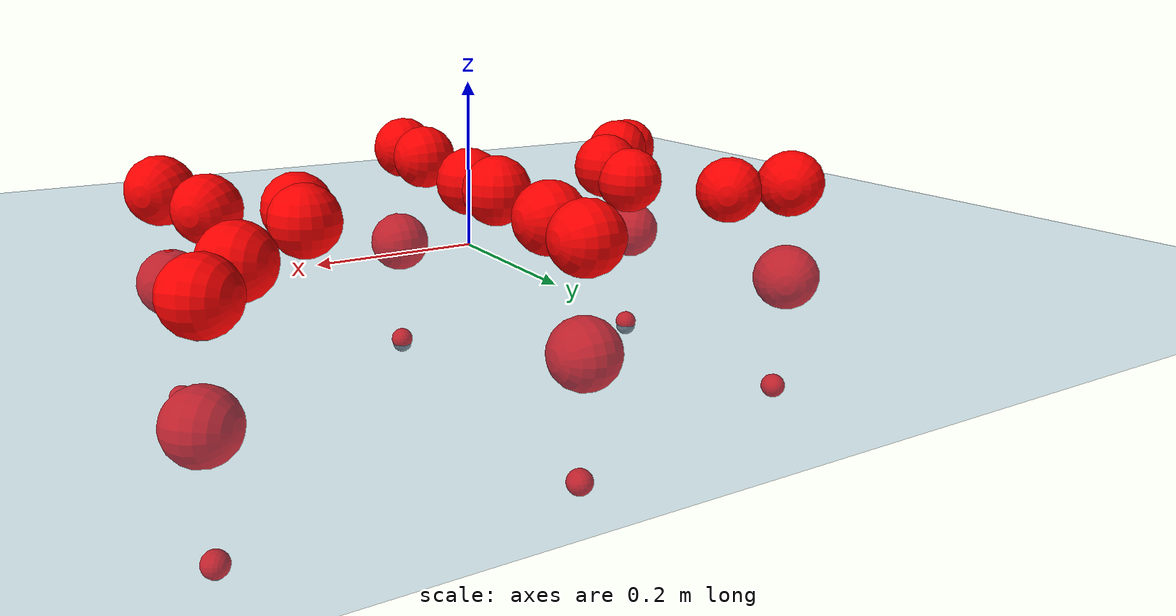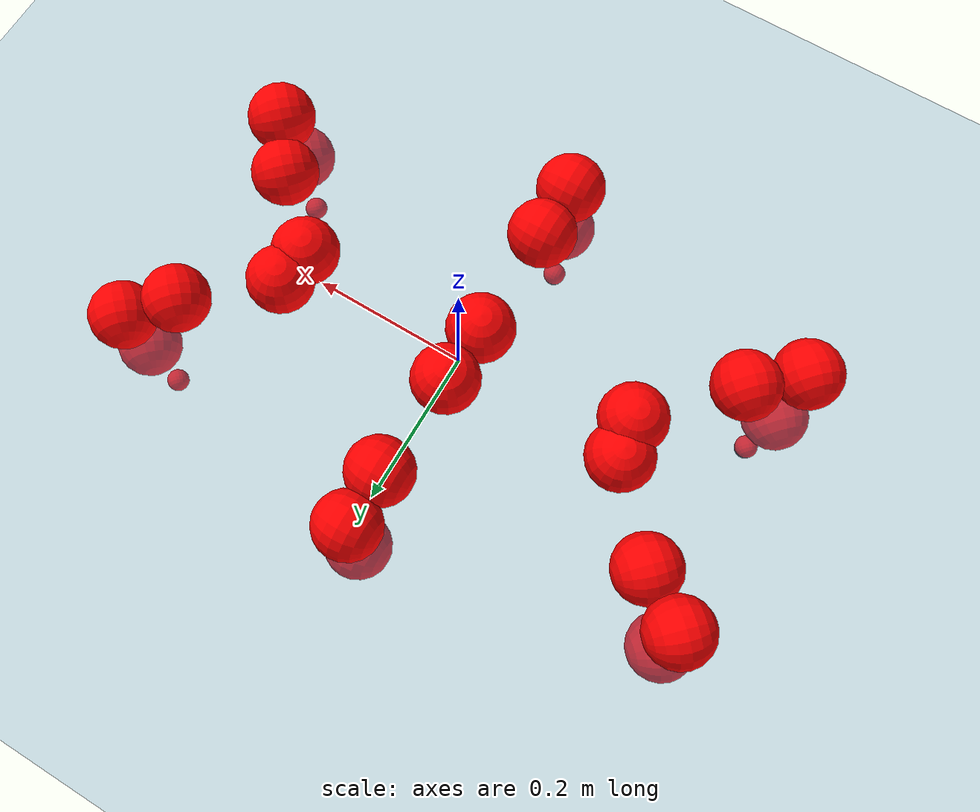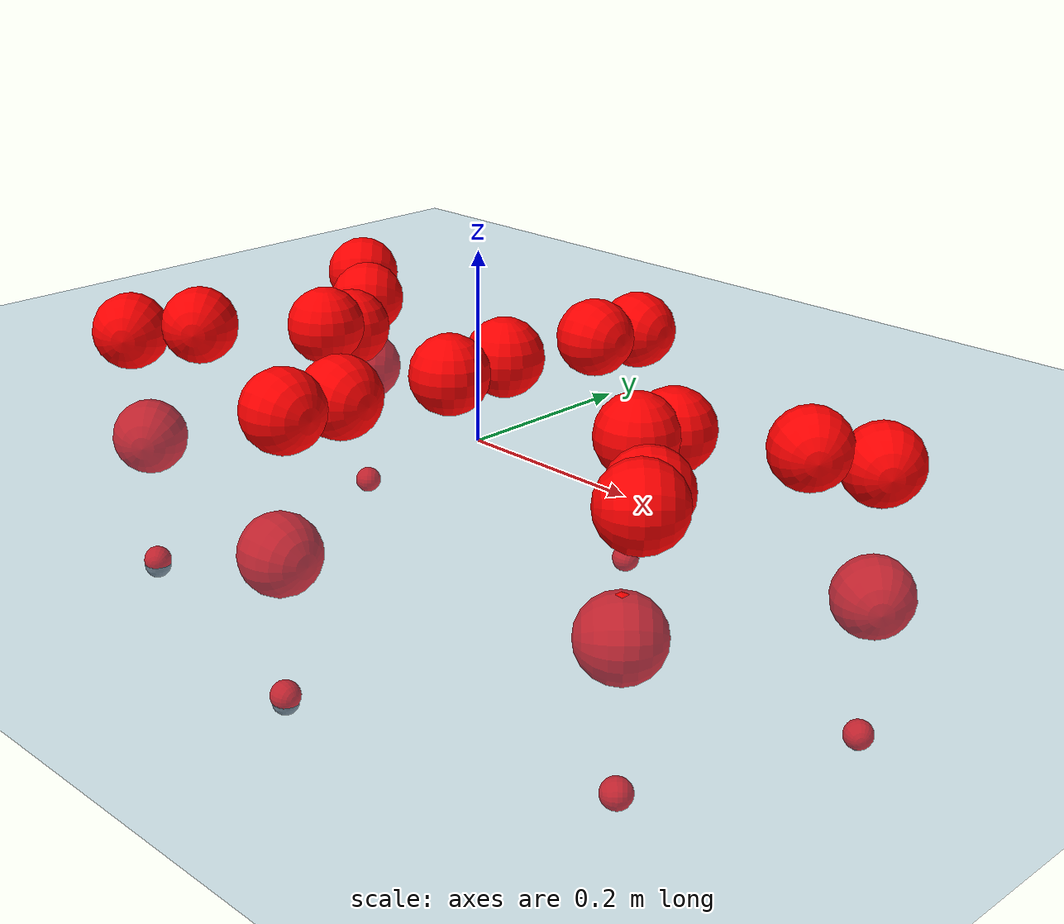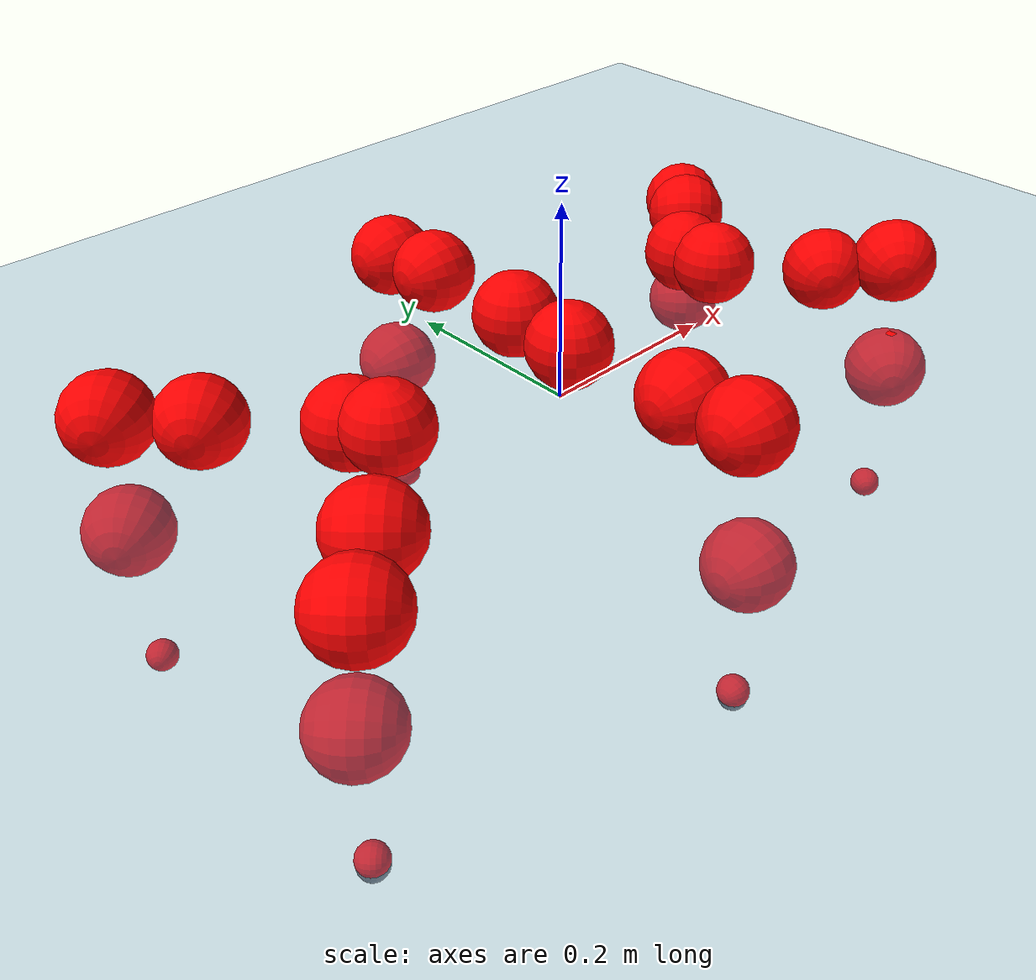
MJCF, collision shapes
<mujoco model="Golem">
  <compiler angle="radian" assetdir="assets" balanceinertia="true" inertiafromgeom="false"/>

  <option timestep="0.005" density="1.2" viscosity="2e-05"/>

  <size nkey="1"/>

  <visual>
    <quality shadowsize="8192"/>
    <map shadowclip="0.5"/>
  </visual>

  <default>
    <default class="/">
      <joint armature="0.01" damping="0.01" frictionloss="0.01"/>
      <geom contype="0" conaffinity="0" group="1" solref="-1000 -80"/>
      <site size="0.01 0.005 0.005" group="5"/>
      <general forcelimited="true" biastype="affine" gainprm="25" biasprm="0 -25 -0.5"/>
      <default class="visual">
        <geom type="mesh" group="2"/>
      </default>
      <default class="collision">
        <geom group="3"/>
      </default>
      <default class="foot">
        <geom size="0.01 0 0" condim="6" group="4" priority="1" solimp="0.015 1 0.01"/>
      </default>
      <default class="reward_collision_sphere">
        <geom group="5" rgba="1 0 0 1"/>
      </default>
    </default>
  </default>

  <asset>
    <texture type="skybox" colorspace="auto" name="//unnamed_texture_0" builtin="gradient" rgb1="0.95 0.95 0.95" rgb2="0.95 0.95 0.95" width="100" height="600"/>
    <texture type="2d" colorspace="auto" name="texplane" builtin="checker" rgb1="0.345 0.575 0.748" rgb2="0.345 0.575 0.748" markrgb="1 1 1" width="512" height="512"/>
    <material name="MatPlane" class="/" texture="texplane" texuniform="true" texrepeat="2 2" specular="0.9"/>
    <mesh name="body" class="/" file="body.stl" scale="0.001 0.001 0.001"/>
    <mesh name="coxa" class="/" file="coxa.stl" scale="0.001 0.001 0.001"/>
    <mesh name="femur" class="/" file="femur.stl" scale="0.001 0.001 0.001"/>
    <mesh name="tibia" class="/" file="tibia.stl" scale="0.001 0.001 0.001"/>
    <mesh name="tarsus" class="/" file="tarsus.stl" scale="0.001 0.001 0.001"/>
  </asset>

  <worldbody>
    <geom name="floor" class="/" size="100 100 0.125" type="plane" group="0" material="MatPlane"/>
    <light name="toplight_shadow" class="/" pos="0 0 5" dir="0.0990148 0.0990148 -0.990148" type="directional" ambient="0.04 0.04 0.04" diffuse="0.55 0.55 0.55" specular="0.12 0.12 0.12"/>
    <light name="toplight_fill" class="/" pos="0 0 5" dir="0.0990148 0.0990148 -0.990148" type="directional" castshadow="false" ambient="0.04 0.04 0.04" diffuse="0.3 0.3 0.3" specular="0.08 0.08 0.08"/>
    <body name="trunk" pos="0.000373972 0.00306376 0.00952645" quat="0.999983 -0.00470299 -0.00161788 0.00291809">
      <inertial pos="-0.00658758 0.00661405 -0.00995361" quat="0.999621 0.00824002 -0.0251714 -0.00751912" mass="5.46878" diaginertia="0.0681175 0.00135477 0.0145811"/>
      <joint name="//unnamed_joint_0" type="free"/>
      <geom name="//unnamed_geom_1" class="/" pos="0 0 0.0691467" quat="1 0 0 0" type="mesh" rgba="0.9 0.9 0.9 1" mesh="body"/>
      <site name="imu" class="/" pos="0.209212 -0.0595722 0.0337744" size="0.0105314"/>
      <camera name="track" class="/" pos="0 -1.2932 0" quat="0.707107 0.707107 0 0" mode="trackcom"/>
      <camera name="ego_camera" class="/" pos="0.18621 0 0.108042" quat="-0.5 -0.5 0.5 0.5"/>
      <body name="coxa_RR" pos="-0.251216 -0.0522781 0.0684126" quat="0.375645 0.000510773 -0.000553515 -0.926763">
        <inertial pos="-0.0106956 -0.00523695 0.00842367" quat="0.9994 0.030072 -0.0087569 0.0147795" mass="0.208881" diaginertia="0.0678045 0.00100162 0.0125224"/>
        <joint name="coxa_joint_RR" class="/" pos="0 0 0" axis="-0.0256094 0.0191709 -0.999488" range="-3.27547 3.24289" armature="0.00957748" damping="0.0262551" frictionloss="0.00729341"/>
        <geom name="//unnamed_geom_2" class="/" type="mesh" rgba="0.2 0.2 0.2 1" mesh="coxa"/>
        <geom name="//unnamed_geom_3" class="reward_collision_sphere" size="0.0421254" pos="-0.0429716 0 0"/>
        <body name="femur_RR" pos="0.094017 0.00715991 0.000776655" quat="0.500639 -0.505208 0.497961 0.496145">
          <inertial pos="0.00048701 -0.0146159 -0.00810672" quat="0.998915 0.0227645 -0.0404034 0.00435321" mass="0.266052" diaginertia="0.0620964 0.00142845 0.0168292"/>
          <joint name="femur_joint_RR" class="/" pos="0 0 0" axis="0.00176817 0.0142945 -0.999896" range="-3.24918 3.24981" armature="0.00468595" damping="0" frictionloss="0.0108724"/>
          <geom name="//unnamed_geom_4" class="/" type="mesh" rgba="0.9 0.9 0.9 1" mesh="femur"/>
          <geom name="//unnamed_geom_5" class="reward_collision_sphere" size="0.0421254"/>
          <body name="tibia_RR" pos="0.0091983 -0.0764725 -0.00221974" quat="0.000168783 1 0.000271272 1.94296e-05">
            <inertial pos="-0.00113249 -0.0135862 -0.00345272" quat="1 0.000178731 -0.000227728 -9.28904e-05" mass="0.265464" diaginertia="0.0688606 0.0012768 0.0169642"/>
            <joint name="tibia_joint_RR" class="/" pos="0 0 0" axis="0.0621193 0.0217301 0.997832" stiffness="0.0507416" range="-3.41293 3.06259" armature="0.0154221" damping="0.0462941" frictionloss="0.00237256"/>
            <geom name="//unnamed_geom_6" class="/" type="mesh" rgba="0.2 0.2 0.2 1" mesh="tibia"/>
            <geom name="//unnamed_geom_7" class="reward_collision_sphere" size="0.0421254"/>
            <body name="tarsus_RR" pos="0.128699 -0.0109164 0.0132445" quat="0.999992 0.0034501 0.00155992 0.00150891">
              <inertial pos="0.0788473 0.00365709 -0.0102285" quat="0.507068 0.497126 0.470657 0.523669" mass="0.271969" diaginertia="0.0671515 0.0013902 0.013776"/>
              <joint name="tarsus_joint_RR" class="/" pos="0 0 0" axis="-0.0387507 0.0275341 0.998869" range="-2.97156 3.17313" armature="0.0138198" damping="0" frictionloss="0.00925338"/>
              <geom name="//unnamed_geom_8" class="/" type="mesh" rgba="0.9 0.9 0.9 1" mesh="tarsus"/>
              <geom name="foot_1" class="foot" size="0.0151687" pos="0.160427 0 0" quat="0 -0.707107 0 0.707107"/>
              <geom name="//unnamed_geom_10" class="reward_collision_sphere" size="0.0421254"/>
              <geom name="//unnamed_geom_11" class="reward_collision_sphere" size="0.015797" pos="0.153981 0 0"/>
              <site name="foot_1" class="foot" pos="0.160427 0 0" quat="0 -0.707107 0 0.707107" size="0.0105314"/>
            </body>
          </body>
        </body>
      </body>
      <body name="coxa_RM" pos="-0.0151328 -0.0725947 0.0645751" quat="0.706446 -0.00151285 -0.00120538 -0.707765">
        <inertial pos="-0.00124924 0.000970648 0.0120697" quat="0.997262 -0.0651173 0.0108749 0.0333263" mass="0.208332" diaginertia="0.0483871 0.000760135 0.0103258"/>
        <joint name="coxa_joint_RM" class="/" pos="0 0 0" axis="0.00353368 -0.0709268 -0.997475" stiffness="0.037636" range="-3.1534 3.3009" armature="0.0130071" damping="0" frictionloss="0.00544187"/>
        <geom name="//unnamed_geom_12" class="/" type="mesh" rgba="0.2 0.2 0.2 1" mesh="coxa"/>
        <geom name="//unnamed_geom_13" class="reward_collision_sphere" size="0.0421254" pos="-0.0429716 0 0"/>
        <body name="femur_RM" pos="0.0960777 -0.00375274 0.00810103" quat="0.500418 -0.499966 0.499838 0.499778">
          <inertial pos="-6.03782e-05 -0.0105882 0.000537327" quat="0.999886 0.0139223 0.0039456 0.00431596" mass="0.212012" diaginertia="0.0703002 0.00114757 0.0163197"/>
          <joint name="femur_joint_RM" class="/" pos="0 0 0" axis="0.000210718 4.0223e-05 -1" stiffness="0.0544905" range="-3.37131 2.98405" armature="0.00531167" damping="0.0128724" frictionloss="0.0037884"/>
          <geom name="//unnamed_geom_14" class="/" type="mesh" rgba="0.9 0.9 0.9 1" mesh="femur"/>
          <geom name="//unnamed_geom_15" class="reward_collision_sphere" size="0.0421254"/>
          <body name="tibia_RM" pos="-0.00258285 -0.0684722 -0.000900276" quat="-0.000733734 1 -0.000486329 -0.000408298">
            <inertial pos="-0.00127595 0.000304619 -0.0110225" quat="0.999839 0.00732966 0.0132703 0.00958938" mass="0.193773" diaginertia="0.0605027 0.00111836 0.016135"/>
            <joint name="tibia_joint_RM" class="/" pos="0 0 0" axis="0.0202757 -0.0643206 0.997723" range="-3.27347 2.93894" armature="0.0178638" damping="0.0060575" frictionloss="0.0034156"/>
            <geom name="//unnamed_geom_16" class="/" type="mesh" rgba="0.2 0.2 0.2 1" mesh="tibia"/>
            <geom name="//unnamed_geom_17" class="reward_collision_sphere" size="0.0421254"/>
            <body name="tarsus_RM" pos="0.14148 0.0120779 -0.00393979" quat="0.999987 -0.00424654 -0.0027871 -0.00097138">
              <inertial pos="0.0870503 0.00236255 7.14932e-05" quat="0.500058 0.499998 0.499985 0.499959" mass="0.167799" diaginertia="0.0508528 0.0009453 0.0120958"/>
              <joint name="tarsus_joint_RM" class="/" pos="0 0 0" axis="-0.022314 0.0235296 0.999474" range="-3.26147 3.21416" armature="0.0143574" damping="0" frictionloss="0.00835741"/>
              <geom name="//unnamed_geom_18" class="/" type="mesh" rgba="0.9 0.9 0.9 1" mesh="tarsus"/>
              <geom name="foot_2" class="foot" size="0.0141042" pos="0.160427 0 0" quat="0 -0.707107 0 0.707107"/>
              <geom name="//unnamed_geom_20" class="reward_collision_sphere" size="0.0421254"/>
              <geom name="//unnamed_geom_21" class="reward_collision_sphere" size="0.015797" pos="0.153981 0 0"/>
              <site name="foot_2" class="foot" pos="0.160427 0 0" quat="0 -0.707107 0 0.707107" size="0.0105314"/>
            </body>
          </body>
        </body>
      </body>
      <body name="coxa_RF" pos="0.248309 -0.0399893 0.0579519" quat="0.923875 7.64985e-06 2.57263e-07 -0.382694">
        <inertial pos="0.0138708 -0.0016288 0.0109364" quat="0.998934 -0.00200401 0.044653 0.0115176" mass="0.221546" diaginertia="0.0479198 0.000879942 0.0122274"/>
        <joint name="coxa_joint_RF" class="/" pos="0 0 0" axis="-0.00285657 -0.0198648 -0.999799" stiffness="0.0562832" range="-3.16657 3.32586" armature="0.0120385" damping="0" frictionloss="0.00370246"/>
        <geom name="//unnamed_geom_22" class="/" type="mesh" rgba="0.2 0.2 0.2 1" mesh="coxa"/>
        <geom name="//unnamed_geom_23" class="reward_collision_sphere" size="0.0421254" pos="-0.0429716 0 0"/>
        <body name="femur_RF" pos="0.0717932 0.00236107 -0.00856051" quat="0.502237 -0.496777 0.497518 0.503435">
          <inertial pos="-0.00276112 -0.000328865 0.0042274" quat="0.999143 -0.0117755 -0.0384565 0.00978494" mass="0.225723" diaginertia="0.0673038 0.00129673 0.0163982"/>
          <joint name="femur_joint_RF" class="/" pos="0 0 0" axis="0.0286327 -0.00448513 -0.99958" range="-3.2854 3.16036" armature="0.00893354" damping="0.0142211" frictionloss="0.00932929"/>
          <geom name="//unnamed_geom_24" class="/" type="mesh" rgba="0.9 0.9 0.9 1" mesh="femur"/>
          <geom name="//unnamed_geom_25" class="reward_collision_sphere" size="0.0421254"/>
          <body name="tibia_RF" pos="-0.0157027 -0.0679345 -0.0119427" quat="-0.00194637 0.999995 -0.00245791 -0.000199309">
            <inertial pos="-0.00198623 0.0132894 0.0114579" quat="0.997949 0.048316 0.039604 -0.0139872" mass="0.254093" diaginertia="0.0772349 0.0014108 0.0143792"/>
            <joint name="tibia_joint_RF" class="/" pos="0 0 0" axis="0.0146945 0.0619584 0.997971" stiffness="0.0753667" range="-2.98527 3.11744" armature="0.0101077" damping="0.0416381" frictionloss="0.0152118"/>
            <geom name="//unnamed_geom_26" class="/" type="mesh" rgba="0.2 0.2 0.2 1" mesh="tibia"/>
            <geom name="//unnamed_geom_27" class="reward_collision_sphere" size="0.0421254"/>
            <body name="tarsus_RF" pos="0.11899 0.00537363 0.0143287" quat="1 -4.28887e-05 3.49208e-05 8.94046e-05">
              <inertial pos="0.0817625 -0.00313207 0.00192411" quat="0.500874 0.486508 0.487991 0.523737" mass="0.251908" diaginertia="0.0719157 0.0014186 0.0155168"/>
              <joint name="tarsus_joint_RF" class="/" pos="0 0 0" axis="0.0150039 0.0729034 0.997226" range="-3.08469 3.21621" armature="0.013846" damping="0.0125348" frictionloss="0.00603686"/>
              <geom name="//unnamed_geom_28" class="/" type="mesh" rgba="0.9 0.9 0.9 1" mesh="tarsus"/>
              <geom name="foot_3" class="foot" size="0.0075459" pos="0.160427 0 0" quat="0 -0.707107 0 0.707107"/>
              <geom name="//unnamed_geom_30" class="reward_collision_sphere" size="0.0421254"/>
              <geom name="//unnamed_geom_31" class="reward_collision_sphere" size="0.015797" pos="0.153981 0 0"/>
              <site name="foot_3" class="foot" pos="0.160427 0 0" quat="0 -0.707107 0 0.707107" size="0.0105314"/>
            </body>
          </body>
        </body>
      </body>
      <body name="coxa_LR" pos="-0.258986 0.0511993 0.0552443" quat="0.381153 -0.00264958 0.00534742 0.924493">
        <inertial pos="0.00772483 -0.011543 0.0122658" quat="0.999831 0.00150127 -0.017179 0.00630451" mass="0.226548" diaginertia="0.0615717 0.00121468 0.0139619"/>
        <joint name="coxa_joint_LR" class="/" pos="0 0 0" axis="-0.0314469 -0.0446634 -0.998507" range="-2.99456 2.87698" armature="0.0100895" damping="0.000551934" frictionloss="0.00505512"/>
        <geom name="//unnamed_geom_32" class="/" type="mesh" rgba="0.2 0.2 0.2 1" mesh="coxa"/>
        <geom name="//unnamed_geom_33" class="reward_collision_sphere" size="0.0421254" pos="-0.0429716 0 0"/>
        <body name="femur_LR" pos="0.0859889 -0.00818465 -0.00216976" quat="0.498379 -0.49899 0.500017 0.502603">
          <inertial pos="-0.00191438 -0.0102867 -0.005422" quat="0.99757 -0.0668946 -0.00125198 -0.0194337" mass="0.26857" diaginertia="0.0548925 0.00126948 0.0173625"/>
          <joint name="femur_joint_LR" class="/" pos="0 0 0" axis="-0.0593708 0.0530365 0.996826" range="-2.98829 3.01253" armature="0.0031012" damping="0" frictionloss="0.0104849"/>
          <geom name="//unnamed_geom_34" class="/" type="mesh" rgba="0.9 0.9 0.9 1" mesh="femur"/>
          <geom name="//unnamed_geom_35" class="reward_collision_sphere" size="0.0421254"/>
          <body name="tibia_LR" pos="-0.0118457 -0.0744592 0.0107602" quat="-0.00264405 0.999996 -5.90704e-05 -0.00128623">
            <inertial pos="0.00796835 -0.00583243 -0.0113229" quat="0.998726 -0.0459407 0.0026302 0.0206891" mass="0.185998" diaginertia="0.054641 0.000974772 0.0151397"/>
            <joint name="tibia_joint_LR" class="/" pos="0 0 0" axis="0.00549399 0.000983984 -0.999984" range="-3.41904 2.92933" armature="0.0170612" damping="0" frictionloss="0.0108042"/>
            <geom name="//unnamed_geom_36" class="/" type="mesh" rgba="0.2 0.2 0.2 1" mesh="tibia"/>
            <geom name="//unnamed_geom_37" class="reward_collision_sphere" size="0.0421254"/>
            <body name="tarsus_LR" pos="0.122971 0.00817675 0.00258582" quat="1 -0.00028081 0.000244189 -9.97143e-05">
              <inertial pos="0.0869612 0.0125272 -0.00353647" quat="0.496637 0.501469 0.502018 0.499859" mass="0.291656" diaginertia="0.0646092 0.000977182 0.0141487"/>
              <joint name="tarsus_joint_LR" class="/" pos="0 0 0" axis="-0.000522083 0.00237077 -0.999997" range="-3.06446 2.95767" armature="0.011231" damping="0.03556" frictionloss="0.0152021"/>
              <geom name="//unnamed_geom_38" class="/" type="mesh" rgba="0.9 0.9 0.9 1" mesh="tarsus"/>
              <geom name="foot_4" class="foot" size="0.00702168" pos="0.160427 0 0" quat="0.707107 0 -0.707107 0"/>
              <geom name="//unnamed_geom_40" class="reward_collision_sphere" size="0.0421254"/>
              <geom name="//unnamed_geom_41" class="reward_collision_sphere" size="0.015797" pos="0.153981 0 0"/>
              <site name="foot_4" class="foot" pos="0.160427 0 0" quat="0.707107 0 -0.707107 0" size="0.0105314"/>
            </body>
          </body>
        </body>
      </body>
      <body name="coxa_LM" pos="-0.011635 0.0883944 0.0665765" quat="0.707863 -0.00059228 0.00196712 0.706347">
        <inertial pos="-0.000655578 -0.000664031 0.0137196" quat="0.999857 -0.00946808 -0.0123405 -0.00665129" mass="0.237379" diaginertia="0.0514401 0.00105604 0.0136559"/>
        <joint name="coxa_joint_LM" class="/" pos="0 0 0" axis="0.0283804 -0.0305147 -0.999131" range="-3.07446 3.14429" armature="0.00726335" damping="0.0597052" frictionloss="0.0101532"/>
        <geom name="//unnamed_geom_42" class="/" type="mesh" rgba="0.2 0.2 0.2 1" mesh="coxa"/>
        <geom name="//unnamed_geom_43" class="reward_collision_sphere" size="0.0421254" pos="-0.0429716 0 0"/>
        <body name="femur_LM" pos="0.0873971 -0.00823494 -0.00421814" quat="0.500418 -0.500053 0.49972 0.499808">
          <inertial pos="0.0105691 0.00223294 0.0151834" quat="0.998553 0.0394656 0.0221052 0.0290882" mass="0.244735" diaginertia="0.0658366 0.00119629 0.0159757"/>
          <joint name="femur_joint_LM" class="/" pos="0 0 0" axis="-0.0334509 -0.0247461 0.999134" range="-3.22891 3.43449" armature="0.0148481" damping="0.0144712" frictionloss="0.0168273"/>
          <geom name="//unnamed_geom_44" class="/" type="mesh" rgba="0.9 0.9 0.9 1" mesh="femur"/>
          <geom name="//unnamed_geom_45" class="reward_collision_sphere" size="0.0421254"/>
          <body name="tibia_LM" pos="0.00614549 -0.070256 0.000196348" quat="0.000638784 0.999992 0.00182753 0.00343045">
            <inertial pos="-0.00711133 5.14026e-05 -0.000942955" quat="0.999876 -0.00518055 0.0141279 -0.00462017" mass="0.249458" diaginertia="0.072679 0.00133634 0.0173855"/>
            <joint name="tibia_joint_LM" class="/" pos="0 0 0" axis="-0.0314992 -0.050714 -0.998216" range="-3.37239 3.30007" armature="0.00258754" damping="0.045144" frictionloss="0.00446287"/>
            <geom name="//unnamed_geom_46" class="/" type="mesh" rgba="0.2 0.2 0.2 1" mesh="tibia"/>
            <geom name="//unnamed_geom_47" class="reward_collision_sphere" size="0.0421254"/>
            <body name="tarsus_LM" pos="0.127802 0.00193361 -0.00129065" quat="1 7.41651e-06 0.000143202 6.61109e-05">
              <inertial pos="0.0932459 0.00822477 0.000412468" quat="0.474327 0.49489 0.530035 0.49916" mass="0.278968" diaginertia="0.0761521 0.00161487 0.0188836"/>
              <joint name="tarsus_joint_LM" class="/" pos="0 0 0" axis="0.0164571 0.0407742 -0.999033" range="-3.15788 3.1212" armature="0.0129308" damping="0" frictionloss="0.00283732"/>
              <geom name="//unnamed_geom_48" class="/" type="mesh" rgba="0.9 0.9 0.9 1" mesh="tarsus"/>
              <geom name="foot_5" class="foot" size="0.00714561" pos="0.160427 0 0" quat="0.707107 0 -0.707107 0"/>
              <geom name="//unnamed_geom_50" class="reward_collision_sphere" size="0.0421254"/>
              <geom name="//unnamed_geom_51" class="reward_collision_sphere" size="0.015797" pos="0.153981 0 0"/>
              <site name="foot_5" class="foot" pos="0.160427 0 0" quat="0.707107 0 -0.707107 0" size="0.0105314"/>
            </body>
          </body>
        </body>
      </body>
      <body name="coxa_LF" pos="0.255133 0.0654059 0.0538607" quat="0.922951 0.00123173 0.000611865 0.384914">
        <inertial pos="0.0135445 0.015284 0.0100805" quat="0.999671 0.00600011 -0.00851185 -0.0234355" mass="0.266754" diaginertia="0.0684793 0.00153396 0.0144929"/>
        <joint name="coxa_joint_LF" class="/" pos="0 0 0" axis="0.0677717 0.000392965 -0.997701" stiffness="0.00303828" range="-2.9689 3.15428" armature="0.00795504" damping="0" frictionloss="0.0162558"/>
        <geom name="//unnamed_geom_52" class="/" type="mesh" rgba="0.2 0.2 0.2 1" mesh="coxa"/>
        <geom name="//unnamed_geom_53" class="reward_collision_sphere" size="0.0421254" pos="-0.0429716 0 0"/>
        <body name="femur_LF" pos="0.0848633 -0.0130152 -0.0124822" quat="0.498361 -0.498393 0.498652 0.504565">
          <inertial pos="0.0014619 0.00882219 -0.00539969" quat="0.99999 0.000301994 -0.00282639 -0.00354551" mass="0.252145" diaginertia="0.0820565 0.00131925 0.017021"/>
          <joint name="femur_joint_LF" class="/" pos="0 0 0" axis="-0.0527481 0.0395798 0.997823" range="-2.98925 2.91621" armature="0.00853357" damping="0.00207046" frictionloss="0.0105633"/>
          <geom name="//unnamed_geom_54" class="/" type="mesh" rgba="0.9 0.9 0.9 1" mesh="femur"/>
          <geom name="//unnamed_geom_55" class="reward_collision_sphere" size="0.0421254"/>
          <body name="tibia_LF" pos="0.0142013 -0.0684717 -0.00216397" quat="-1.45632e-05 0.999992 -0.00404432 0.000619684">
            <inertial pos="-0.00911592 -0.0129945 0.00810028" quat="0.999977 -0.00416538 -0.00238664 0.00478872" mass="0.217905" diaginertia="0.0715395 0.00119995 0.0172536"/>
            <joint name="tibia_joint_LF" class="/" pos="0 0 0" axis="-0.0431037 0.0208148 -0.998854" stiffness="0.0668983" range="-3.16639 3.36336" armature="0.0134274" damping="0.0463473" frictionloss="0.00797613"/>
            <geom name="//unnamed_geom_56" class="/" type="mesh" rgba="0.2 0.2 0.2 1" mesh="tibia"/>
            <geom name="//unnamed_geom_57" class="reward_collision_sphere" size="0.0421254"/>
            <body name="tarsus_LF" pos="0.133704 0.000679225 0.0110177" quat="1 -5.21093e-05 7.43637e-05 -0.000126574">
              <inertial pos="0.101459 -0.00414672 0.00483902" quat="0.476113 0.555218 0.511375 0.45116" mass="0.249796" diaginertia="0.0584853 0.00110048 0.014898"/>
              <joint name="tarsus_joint_LF" class="/" pos="0 0 0" axis="-0.0366465 0.0707933 -0.996818" range="-3.29281 3.34568" armature="0.0117488" damping="0.0599193" frictionloss="0.01441"/>
              <geom name="//unnamed_geom_58" class="/" type="mesh" rgba="0.9 0.9 0.9 1" mesh="tarsus"/>
              <geom name="foot_6" class="foot" size="0.0107896" pos="0.160427 0 0" quat="0.707107 0 -0.707107 0"/>
              <geom name="//unnamed_geom_60" class="reward_collision_sphere" size="0.0421254"/>
              <geom name="//unnamed_geom_61" class="reward_collision_sphere" size="0.015797" pos="0.153981 0 0"/>
              <site name="foot_6" class="foot" pos="0.160427 0 0" quat="0.707107 0 -0.707107 0" size="0.0105314"/>
            </body>
          </body>
        </body>
      </body>
    </body>
  </worldbody>

  <contact>
    <pair class="/" geom1="floor" geom2="foot_1" name="//unnamed_contact_0"/>
    <pair class="/" geom1="floor" geom2="foot_2" name="//unnamed_contact_1"/>
    <pair class="/" geom1="floor" geom2="foot_3" name="//unnamed_contact_2"/>
    <pair class="/" geom1="floor" geom2="foot_4" name="//unnamed_contact_3"/>
    <pair class="/" geom1="floor" geom2="foot_5" name="//unnamed_contact_4"/>
    <pair class="/" geom1="floor" geom2="foot_6" name="//unnamed_contact_5"/>
  </contact>

  <actuator>
    <general name="coxa_joint_RR" class="/" joint="coxa_joint_RR" forcerange="-7.38787 7.38787" gainprm="24.0563" biasprm="0 -24.0563 -0.443844"/>
    <general name="femur_joint_RR" class="/" joint="femur_joint_RR" forcerange="-6.31358 6.31358" gainprm="24.0563" biasprm="0 -24.0563 -0.443844"/>
    <general name="tibia_joint_RR" class="/" joint="tibia_joint_RR" forcerange="-7.46216 7.46216" gainprm="24.0563" biasprm="0 -24.0563 -0.443844"/>
    <general name="tarsus_joint_RR" class="/" joint="tarsus_joint_RR" forcerange="-4.36468 4.36468" gainprm="24.0563" biasprm="0 -24.0563 -0.443844"/>
    <general name="coxa_joint_RM" class="/" joint="coxa_joint_RM" forcerange="-9.54013 9.54013" gainprm="24.0563" biasprm="0 -24.0563 -0.443844"/>
    <general name="femur_joint_RM" class="/" joint="femur_joint_RM" forcerange="-4.33419 4.33419" gainprm="24.0563" biasprm="0 -24.0563 -0.443844"/>
    <general name="tibia_joint_RM" class="/" joint="tibia_joint_RM" forcerange="-6.21606 6.21606" gainprm="24.0563" biasprm="0 -24.0563 -0.443844"/>
    <general name="tarsus_joint_RM" class="/" joint="tarsus_joint_RM" forcerange="-5.71346 5.71346" gainprm="24.0563" biasprm="0 -24.0563 -0.443844"/>
    <general name="coxa_joint_RF" class="/" joint="coxa_joint_RF" forcerange="-11.0015 11.0015" gainprm="24.0563" biasprm="0 -24.0563 -0.443844"/>
    <general name="femur_joint_RF" class="/" joint="femur_joint_RF" forcerange="-6.93508 6.93508" gainprm="24.0563" biasprm="0 -24.0563 -0.443844"/>
    <general name="tibia_joint_RF" class="/" joint="tibia_joint_RF" forcerange="-5.99438 5.99438" gainprm="24.0563" biasprm="0 -24.0563 -0.443844"/>
    <general name="tarsus_joint_RF" class="/" joint="tarsus_joint_RF" forcerange="-6.8201 6.8201" gainprm="24.0563" biasprm="0 -24.0563 -0.443844"/>
    <general name="coxa_joint_LR" class="/" joint="coxa_joint_LR" forcerange="-7.86256 7.86256" gainprm="24.0563" biasprm="0 -24.0563 -0.443844"/>
    <general name="femur_joint_LR" class="/" joint="femur_joint_LR" forcerange="-7.42413 7.42413" gainprm="24.0563" biasprm="0 -24.0563 -0.443844"/>
    <general name="tibia_joint_LR" class="/" joint="tibia_joint_LR" forcerange="-8.22083 8.22083" gainprm="24.0563" biasprm="0 -24.0563 -0.443844"/>
    <general name="tarsus_joint_LR" class="/" joint="tarsus_joint_LR" forcerange="-7.4579 7.4579" gainprm="24.0563" biasprm="0 -24.0563 -0.443844"/>
    <general name="coxa_joint_LM" class="/" joint="coxa_joint_LM" forcerange="-8.80942 8.80942" gainprm="24.0563" biasprm="0 -24.0563 -0.443844"/>
    <general name="femur_joint_LM" class="/" joint="femur_joint_LM" forcerange="-8.68574 8.68574" gainprm="24.0563" biasprm="0 -24.0563 -0.443844"/>
    <general name="tibia_joint_LM" class="/" joint="tibia_joint_LM" forcerange="-7.84253 7.84253" gainprm="24.0563" biasprm="0 -24.0563 -0.443844"/>
    <general name="tarsus_joint_LM" class="/" joint="tarsus_joint_LM" forcerange="-5.78172 5.78172" gainprm="24.0563" biasprm="0 -24.0563 -0.443844"/>
    <general name="coxa_joint_LF" class="/" joint="coxa_joint_LF" forcerange="-10.0162 10.0162" gainprm="24.0563" biasprm="0 -24.0563 -0.443844"/>
    <general name="femur_joint_LF" class="/" joint="femur_joint_LF" forcerange="-7.99617 7.99617" gainprm="24.0563" biasprm="0 -24.0563 -0.443844"/>
    <general name="tibia_joint_LF" class="/" joint="tibia_joint_LF" forcerange="-7.91756 7.91756" gainprm="24.0563" biasprm="0 -24.0563 -0.443844"/>
    <general name="tarsus_joint_LF" class="/" joint="tarsus_joint_LF" forcerange="-7.98491 7.98491" gainprm="24.0563" biasprm="0 -24.0563 -0.443844"/>
  </actuator>

  <sensor>
    <gyro site="imu" name="imu_angular_velocity"/>
    <velocimeter site="imu" name="imu_linear_velocity"/>
    <framelinvel objtype="site" objname="foot_1" name="foot_1_global_linear_velocity"/>
    <framelinvel objtype="site" objname="foot_2" name="foot_2_global_linear_velocity"/>
    <framelinvel objtype="site" objname="foot_3" name="foot_3_global_linear_velocity"/>
    <framelinvel objtype="site" objname="foot_4" name="foot_4_global_linear_velocity"/>
    <framelinvel objtype="site" objname="foot_5" name="foot_5_global_linear_velocity"/>
    <framelinvel objtype="site" objname="foot_6" name="foot_6_global_linear_velocity"/>
  </sensor>

  <keyframe>
    <key name="home" qpos="0 0 0.1457 1 0 0 0 0 0 0 0 0 0 0 0 0 0 0 0 0 0 0 0 0 0 0 0 0 0 0 0"/>
  </keyframe>
</mujoco>
